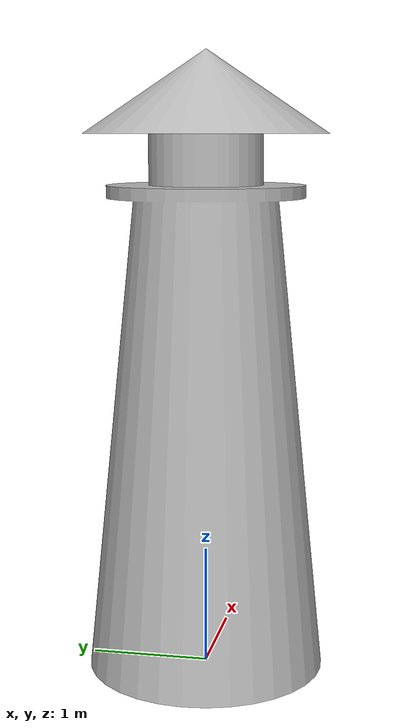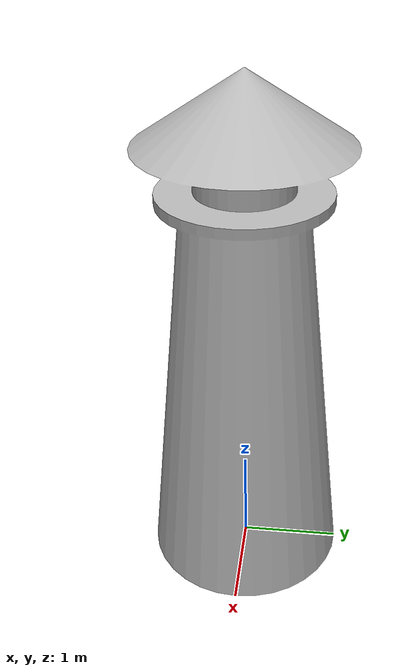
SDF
<?xml version="1.0" ?>
<sdf version="1.5">
  <model name="lighthouse4">
    <pose>0 0 0 0 0 0</pose>
    <static>true</static>
    <link name="body">
      <visual name="visual">
        <geometry>
            <mesh>
                <uri>model://lighthouse4/media/lighthouse4.dae</uri>
            </mesh>
        </geometry>
	    <material>
          <script>
            <uri>model://lighthouse4/media/scripts</uri>
            <uri>model://lighthouse4/media/textures</uri>
            <name>test/lighthouse4</name>
          </script>
        </material>
      </visual>
      <collision name="collision">
        <geometry>
            <mesh>
                <uri>model://lighthouse4/media/lighthouse4.dae</uri>
            </mesh>
        </geometry>
      </collision>
    </link>
  </model>
</sdf>
